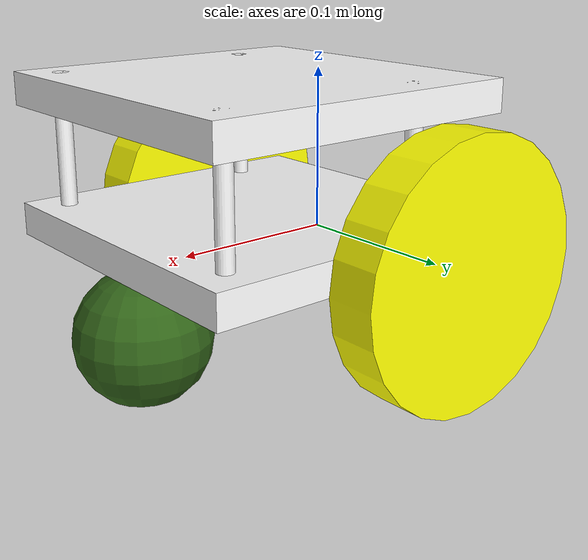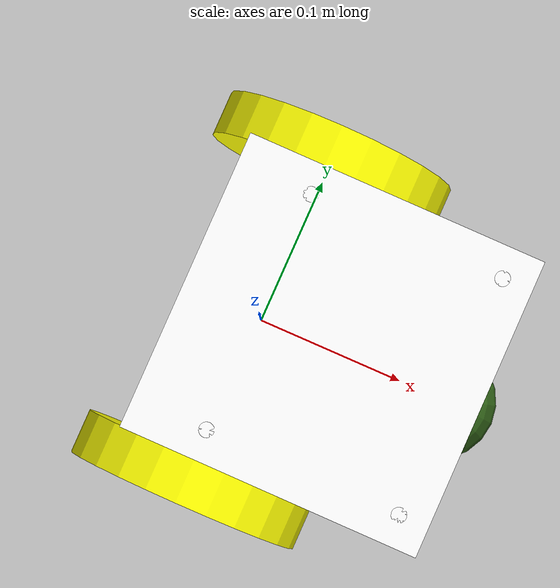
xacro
<?xml version="1.0"?>
<robot xmlns:xacro="https://www.ros.org/wiki/xacro" name="robot">

    <xacro:include filename="chassis.xacro"/>
    <xacro:include filename="inertial.xacro"/>

    <material name="white">
        <color rgba="1 1 1 1" />
    </material>

    <material name="red">
        <color rgba="0.3 0.1 0.1 1"/>
    </material>

    <material name="blue">
        <color  rgba="0 0 0.5 1"/>
    </material>

    <material name="black">
        <color rgba="0.20 0.40 0.10 1"/>
    </material>

    <!--base link -->

    <link name="base_link">

    </link>

    <link name="base_footprint">

    </link>

    <joint name="base_footprint_joint" type="fixed">
        <parent link="base_link"/>
        <child link="base_footprint"/>
        <origin xyz="0.0 0.0 0.0" rpy="0.0 0.0 0.0"/>

    </joint>

    <!-- base link to chassis-->
    <joint name="base_chassis" type="fixed">
        <parent link="base_link"/>
        <child link="chassis"/>
        <origin xyz="-0.05 0 0.0"/>
    </joint>

    <!--left wheel link-->
    <link name="left_wheel">
        <visual>
            <geometry>
                <cylinder radius="0.08" length="0.03"/>
            </geometry>
            <material name="yellow">
                <color  rgba="1 1 0 1"/>
            </material>
        </visual>
        <collision>
            <geometry>
                <cylinder radius="0.08" length="0.03"/>
            </geometry>
        </collision>
        <xacro:inertial_cylinder mass="0.1"  length="0.03" radius="0.08">
            <origin xyz="0 0 0" rpy="0 0 0"/>
        </xacro:inertial_cylinder>
    </link>

    <gazebo reference="left_wheel">
        <material>Gazebo/Blue</material>
    </gazebo>

    <!--left wheel joint link-->
    <joint name="left_wheel_to_base_link" type="continuous">
        <parent link="base_link"/> <!--here left wheel linked base link becoz of the base link at the centre of the rotation-->
        <child link="left_wheel"/>
        <origin xyz="0.0 0.115 0.0" rpy="-${pi/2} 0.0 0.0"/>
        <axis xyz="0.0 0.0 1"/>

    </joint>

    <!--right wheel link-->
    <link name="right_wheel">
        <visual>
            <geometry>
                <cylinder radius="0.08" length="0.03"/>
            </geometry>
            <material name="yellow">
                <color  rgba="1 1 0 1"/>
            </material>
        </visual>
        <collision>
            <geometry>
                <cylinder radius="0.08" length="0.03"/>
            </geometry>

        </collision>
        <xacro:inertial_cylinder mass="0.1"  length="0.03" radius="0.08">
            <origin xyz="0 0 0" rpy="0 0 0"/>
        </xacro:inertial_cylinder>
    </link>

    <gazebo reference="right_wheel">
        <material>Gazebo/Blue</material>
    </gazebo>

    <!--right wheel joint link-->
    <joint name="right_wheel_to_base_link" type="continuous">
        <parent link="base_link"/> <!--here left wheel linked base link becoz of the base link at the centre of the rotation-->
        <child link="right_wheel"/>
        <origin xyz="0.0 -0.115 0.0" rpy="${pi/2} 0.0 0.0"/>
        <axis xyz="0.0 0.0 -1"/>

    </joint>

    <!--caster wheel-->
    <link name="caster_wheel">
        <visual>
            <geometry>
                <sphere radius="0.04"/>
            </geometry>
            <material name="black"/>
        </visual>
        <collision>
            <geometry>
                <sphere radius="0.04"/>
            </geometry>
        </collision>
        <xacro:inertial_sphere mass="0.35" radius="0.04">
            <origin xyz="0 0 0" rpy="0 0 0"/>
        </xacro:inertial_sphere>
    </link>

    <gazebo reference="caster_wheel">
        <material>Gazebo/Black</material>
        <mu1 value="0.001"/>
        <mu2 value="0.001"/>
    </gazebo>

    <!--joint link caster to the chassis-->
    <joint name="chassis_to_caster_wheel" type="fixed">
        <parent link="chassis"/>
        <child link="caster_wheel"/>
        <origin xyz="0.180 0.0 -0.04" rpy="0.0 0.0 0.0"/>

    </joint>

</robot>

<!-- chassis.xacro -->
<robot xmlns:xacro="https://www.ros.org/wiki/xacro" name="robot">

    <xacro:include filename="inertial.xacro"/>

    <link name="chassis">
       <visual>
          <origin xyz="0.1 0.0 0.01" rpy="0.0 0.0 0.0"/>
          <geometry>
            <box size="0.20 0.20 0.02"/>
          </geometry>
          <material name="white">
            <color rgba="1 1 1 1" />
          </material>

       </visual>
       <collision>
          <origin xyz="0.1 0.0 0.01" rpy="0.0 0.0 0.0"/>
          <geometry>
            <box size="0.20 0.20 0.02"/>
          </geometry>

       </collision>
       <xacro:inertial_box mass="0.25" x="0.20" y="0.20" z="0.02">
            <origin xyz="0.1 0.0 0.01" rpy="0 0 0"/>
       </xacro:inertial_box>
    </link>

    <gazebo reference="chassis">
        <material>Gazebo/white</material>
    </gazebo>

    <!--4 poles-->

    <!--pole1-->
    <link name="pole1">
        <visual>
            <origin xyz="0 0 0.05"/>

            <geometry>
                <cylinder radius="0.005" length="0.1"/>
            </geometry>
            <material name="white">
                <color rgba="1 1 1 1" />
            </material>
        </visual>
        <collision>
            <origin xyz="0 0 0.05"/>

            <geometry>
                <cylinder radius="0.005" length="0.1"/>
            </geometry>
        </collision>
        <xacro:inertial_cylinder mass="0.1" length="0.1" radius="0.005">
            <origin xyz="0 0 0.05" rpy="0 0 0"/>
        </xacro:inertial_cylinder>
    </link>

    <joint name="chassis_to_pole1" type="fixed">
        <parent link="chassis"/>
        <child link="pole1"/>
        <origin xyz="0.05 0.08 0.0" rpy="0.0 0.0 0.0"/>

    </joint>

    <link name="pole2">
        <visual>
            <origin xyz="0 0 0.05"/>

            <geometry>
                <cylinder radius="0.005" length="0.1"/>
            </geometry>
            <material name="white">
                <color rgba="1 1 1 1" />
            </material>
        </visual>
        <collision>
            <origin xyz="0 0 0.05"/>

            <geometry>
                <cylinder radius="0.005" length="0.1"/>
            </geometry>
        </collision>
        <xacro:inertial_cylinder mass="0.1" length="0.1" radius="0.005">
            <origin xyz="0 0 0.05" rpy="0 0 0"/>
        </xacro:inertial_cylinder>
    </link>

    <joint name="chassis_to_pole2" type="fixed">
        <parent link="chassis"/>
        <child link="pole2"/>
        <origin xyz="0.05 -0.08 0.0" rpy="0.0 0.0 0.0"/>

    </joint>

    <link name="pole3">
        <visual>
            <origin xyz="0 0 0.05"/>

            <geometry>
                <cylinder radius="0.005" length="0.1"/>
            </geometry>
            <material name="white">
                <color rgba="1 1 1 1" />
            </material>
        </visual>
        <collision>
            <origin xyz="0 0 0.05"/>

            <geometry>
                <cylinder radius="0.005" length="0.1"/>
            </geometry>
        </collision>
        <xacro:inertial_cylinder mass="0.1" length="0.1" radius="0.005">
            <origin xyz="0 0 0.05" rpy="0 0 0"/>
        </xacro:inertial_cylinder>
    </link>

    <joint name="chassis_to_pole3" type="fixed">
        <parent link="chassis"/>
        <child link="pole3"/>
        <origin xyz="0.18 -0.08 0.0" rpy="0.0 0.0 0.0"/>

    </joint>

    <link name="pole4">
        <visual>
            <origin xyz="0 0 0.05"/>

            <geometry>
                <cylinder radius="0.005" length="0.1"/>
            </geometry>
            <material name="white">
                <color rgba="1 1 1 1" />
            </material>
        </visual>
        <collision>
            <origin xyz="0 0 0.05"/>

            <geometry>
                <cylinder radius="0.005" length="0.1"/>
            </geometry>
        </collision>
        <xacro:inertial_cylinder mass="0.1" length="0.1" radius="0.005">
            <origin xyz="0 0 0.05" rpy="0 0 0"/>
        </xacro:inertial_cylinder>
    </link>

    <joint name="chassis_to_pole4" type="fixed">
        <parent link="chassis"/>
        <child link="pole4"/>
        <origin xyz="0.18 0.08 0.0" rpy="0.0 0.0 0.0"/>

    </joint>

    <!--1st floor chassis-->

    <link name="chassis1">
       <visual>
          <origin xyz="0.1 0.0 0.01" rpy="0.0 0.0 0.0"/>
          <geometry>
            <box size="0.20 0.20 0.02"/>
          </geometry>
          <material name="white">
            <color rgba="1 1 1 1" />
          </material>

       </visual>
       <collision>
          <origin xyz="0.1 0.0 0.01" rpy="0.0 0.0 0.0"/>
          <geometry>
            <box size="0.20 0.20 0.02"/>
          </geometry>

       </collision>
       <xacro:inertial_box mass="0.25" x="0.20" y="0.20" z="0.02">
            <origin xyz="0.1 0.0 0.01" rpy="0 0 0"/>
       </xacro:inertial_box>

    </link>

    <joint name="chassis_to_chassis1" type="fixed">
        <parent link="chassis"/>
        <child link="chassis1"/>
        <origin xyz="0.0 0.0 0.08" rpy="0.0 0.0 0.0"/>

    </joint>

</robot>
